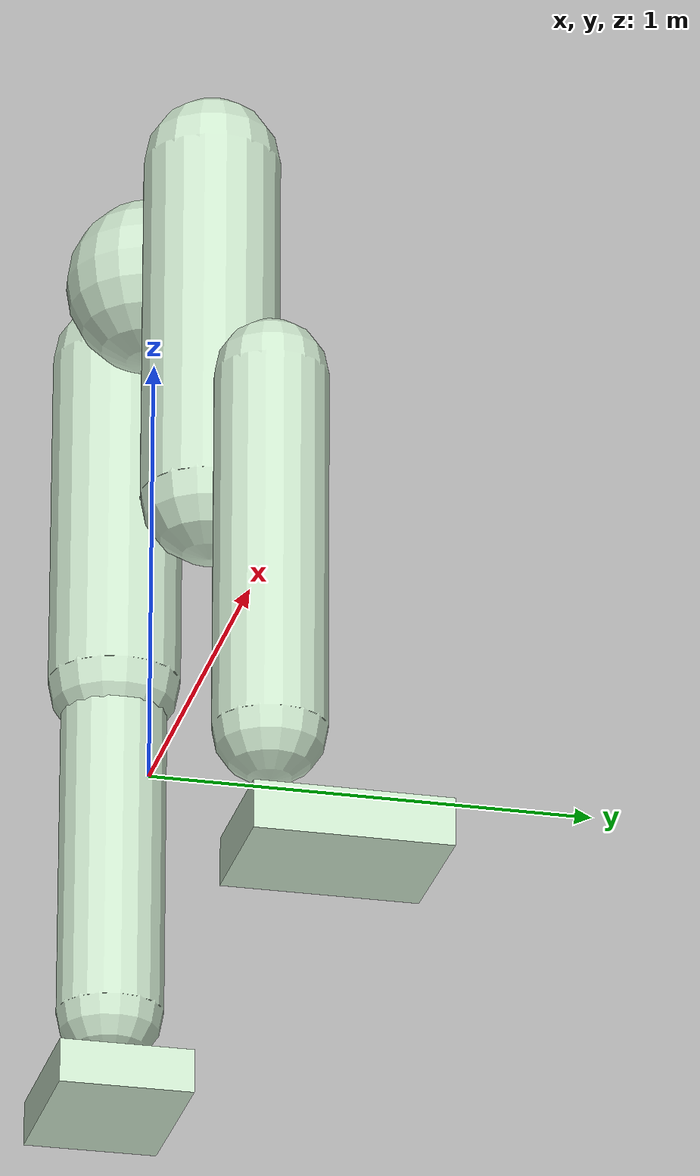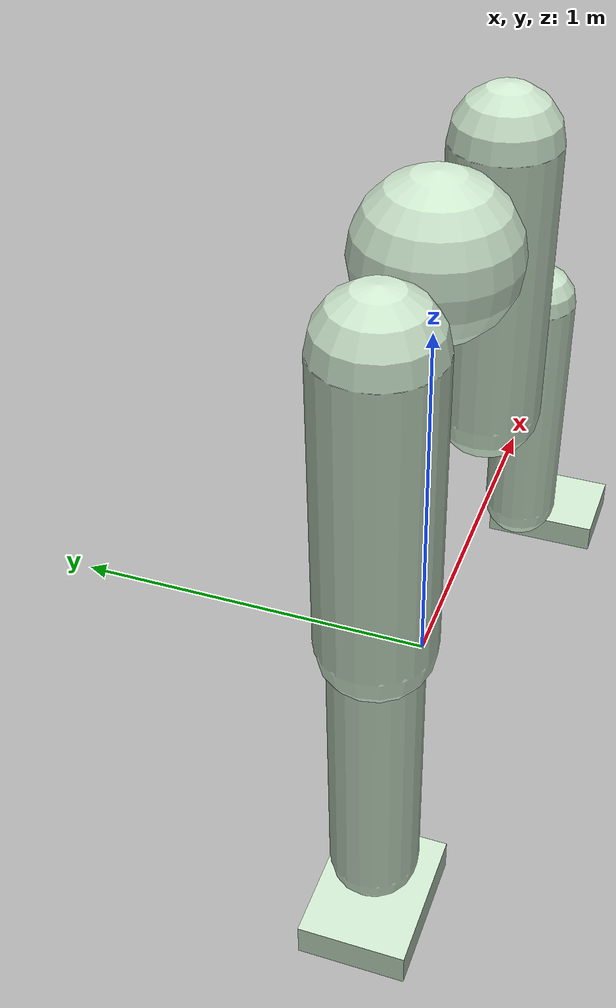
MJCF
<mujoco>
    <compiler angle="degree"/>

    <default>
        <joint armature="0.1" damping="1" limited="true"/>
        <geom conaffinity="0" condim="3" material="MatPlane" rgba="0.8 0.9 0.8 1"/>
        <motor ctrllimited="true"/>
    </default>

    <worldbody>

        <body name="torso" pos="0 0 1.2">
            <joint axis="1 0 0" name="slide" type="slide" range="-0.1 0.1"/>
            <geom name="torso" pos="0 0 0" size="0.2" type="sphere"/>

            <body name="thigh_left" pos="0.6 0 0">
                <joint axis="0 0 1" name="hip_left" type="hinge" range="-90 90"/>
                <geom name="thigh_left" pos="0 0 -0.4" size="0.15 0.4" type="capsule"/>
                <body name="shin_left" pos="0.6 0 -0.8"> <!-- adjust position along X axis -->
                  <joint axis="0 0 1" name="knee_left" type="hinge" range="-90 90"/>
                  <geom name="shin_left" pos="0 0 -0.4" size="0.12 0.4" type="capsule"/>
                  <body name="foot_left" pos="0.6 0 -1.2"> <!-- adjust position along X axis -->
                    <joint axis="1 0 0" name="ankle_left" type="hinge" range="-90 90"/>
                    <geom name="foot_left" pos="0 0 -0.1" size="0.15 0.2 0.05" type="box"/>

                    </body>
                </body>
            </body>
            <body name="thigh_right" pos="-0.4 0 0">
                <joint axis="0 0 1" name="hip_right" type="hinge" range="-180 180"/>
                <geom name="thigh_right" pos="0 0 -0.4" size="0.15 0.4" type="capsule"/>
                <body name="shin_right" pos="0 0 -0.8">
                    <joint axis="0 0 1" name="knee_right" type="hinge" range="-180 180"/>
                    <geom name="shin_right" pos="0 0 -0.4" size="0.12 0.4" type="capsule"/>
                    <body name="foot_right" pos="0 0 -0.8">
                        <geom name="foot_right" pos="0 0 -0.2" size="0.2 0.15 0.05" type="box"/>
                    </body>
                </body>
            </body>
        </body>
    </worldbody>

    <asset>
        <material name="MatPlane" reflectance="0.5"/>
    </asset>

    <actuator>
        <motor ctrlrange="-1 1" gear="100" joint="hip_left"/>
        <motor ctrlrange="-1 1" gear="100" joint="knee_left"/>
        <motor ctrlrange="-1 1" gear="100" joint="hip_right"/>
        <motor ctrlrange="-1 1" gear="100" joint="knee_right"/>
    </actuator>
</mujoco>
